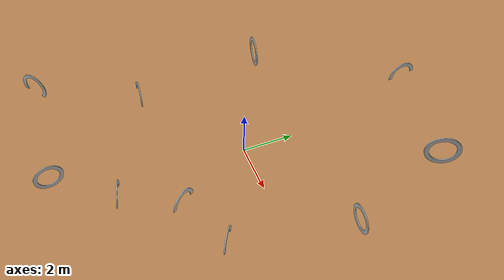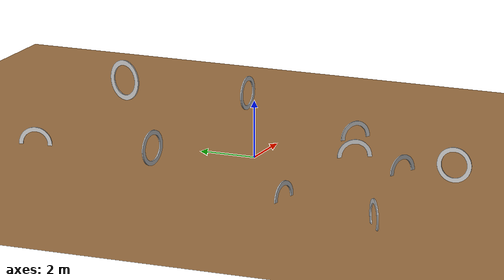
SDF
<sdf version="1.5">
 <world name="default">
  <light type="directional" name="point_light">
   <pose>0.0 0 15 0 0 0</pose>
   <cast_shadows>false</cast_shadows>
  </light>
  <model name="ground_plane">
   <static>1</static>
   <link name="link">
    <collision name="collision">
     <geometry><plane><normal>0 0 1</normal><size>100 100</size></plane></geometry>
     <surface><friction><ode><mu>100</mu><mu2>50</mu2></ode></friction></surface>
    </collision>
    <visual name="visual">
     <cast_shadows>0</cast_shadows>
     <geometry><plane><normal>0 0 1</normal><size>22 22</size></plane></geometry>
     <material><script><uri>model://textures/texture.material</uri><name>Floor_Wood</name></script></material>
    </visual>
   </link>
  </model>
  <physics name="default_physics" default="0" type="ode">
   <gravity>0 0 -9.8066</gravity>
   <ode>
    <solver>
     <type>quick</type>
     <iters>150</iters>
     <sor>1.3</sor>
     <use_dynamic_moi_rescaling>0</use_dynamic_moi_rescaling>
    </solver>
    <constraints>
     <cfm>0.00001</cfm>
     <erp>0.2</erp>
     <contact_max_correcting_vel>1000</contact_max_correcting_vel>
     <contact_surface_layer>0.01</contact_surface_layer>
    </constraints>
   </ode>
   <max_step_size>0.004</max_step_size>
   <real_time_factor>1000.0</real_time_factor>
   <real_time_update_rate>250</real_time_update_rate>
   <magnetic_field>6.0e-6 2.3e-5 -4.2e-5</magnetic_field>
  </physics>
  <gravity>0 0 -9.8066</gravity>
  <magnetic_field>6e-06 2.3e-05 -4.2e-05</magnetic_field>
  <atmosphere type="adiabatic"/>
  <scene><ambient>0.4 0.4 0.4 1</ambient><background>0.7 0.7 0.7 1</background><shadows>1</shadows></scene>
  <spherical_coordinates>
   <surface_model>EARTH_WGS84</surface_model>
   <latitude_deg>0</latitude_deg>
   <longitude_deg>0</longitude_deg>
   <elevation>0</elevation>
   <heading_deg>0</heading_deg>
  </spherical_coordinates>
  <model name="circle_gate_race_3">
   <static>1</static>
   <link name="link">
    <inertial>
     <mass>10</mass>
     <inertia><ixx>10</ixx><ixy>0</ixy><ixz>0</ixz><iyy>10</iyy><iyz>0</iyz><izz>10</izz></inertia>
    </inertial>
    <collision name="collision">
     <geometry>
      <mesh><uri>model://circle_gate_race/meshes/circle_gate_race.stl</uri><scale>1 1 1</scale></mesh>
     </geometry>
    </collision>
    <visual name="visual">
     <geometry>
      <mesh><uri>model://circle_gate_race/meshes/circle_gate_race.stl</uri><scale>1 1 1</scale></mesh>
     </geometry>
     <material><script><uri>model://textures/texture.material</uri><name>gate_texture</name></script></material>
    </visual>
   </link>
   <pose>1.5 -3.1 0 0 -0 0.580225</pose>
  </model>
  <model name="circle_gate_race_4">
   <static>1</static>
   <link name="link">
    <inertial>
     <mass>10</mass>
     <inertia><ixx>10</ixx><ixy>0</ixy><ixz>0</ixz><iyy>10</iyy><iyz>0</iyz><izz>10</izz></inertia>
    </inertial>
    <collision name="collision">
     <geometry>
      <mesh><uri>model://circle_gate_race/meshes/circle_gate_race.stl</uri><scale>1 1 1</scale></mesh>
     </geometry>
    </collision>
    <visual name="visual">
     <geometry>
      <mesh><uri>model://circle_gate_race/meshes/circle_gate_race.stl</uri><scale>1 1 1</scale></mesh>
     </geometry>
     <material><script><uri>model://textures/texture.material</uri><name>gate_texture</name></script></material>
    </visual>
   </link>
   <pose>0.3 -5.3 0 0 -0 1.21727</pose>
  </model>
  <model name="circle_gate_race_2">
   <static>1</static>
   <link name="link">
    <inertial>
     <mass>10</mass>
     <inertia><ixx>10</ixx><ixy>0</ixy><ixz>0</ixz><iyy>10</iyy><iyz>0</iyz><izz>10</izz></inertia>
    </inertial>
    <collision name="collision">
     <geometry>
      <mesh><uri>model://circle_gate_race/meshes/circle_gate_race.stl</uri><scale>1 1 1</scale></mesh>
     </geometry>
    </collision>
    <visual name="visual">
     <geometry>
      <mesh><uri>model://circle_gate_race/meshes/circle_gate_race.stl</uri><scale>1 1 1</scale></mesh>
     </geometry>
     <material><script><uri>model://textures/texture.material</uri><name>gate_texture</name></script></material>
    </visual>
   </link>
   <pose>3.8 -2.2 0 0 -0 0.999678</pose>
  </model>
  <model name="circle_gate_race_1">
   <static>1</static>
   <link name="link">
    <inertial>
     <mass>10</mass>
     <inertia><ixx>10</ixx><ixy>0</ixy><ixz>0</ixz><iyy>10</iyy><iyz>0</iyz><izz>10</izz></inertia>
    </inertial>
    <collision name="collision">
     <geometry>
      <mesh><uri>model://circle_gate_race/meshes/circle_gate_race.stl</uri><scale>1 1 1</scale></mesh>
     </geometry>
    </collision>
    <visual name="visual">
     <geometry>
      <mesh><uri>model://circle_gate_race/meshes/circle_gate_race.stl</uri><scale>1 1 1</scale></mesh>
     </geometry>
     <material><script><uri>model://textures/texture.material</uri><name>gate_texture</name></script></material>
    </visual>
   </link>
   <pose>5.2 2.5 0.8 0 -0 1.56345</pose>
  </model>
  <model name="circle_gate_race_5">
   <static>1</static>
   <link name="link">
    <inertial>
     <mass>10</mass>
     <inertia><ixx>10</ixx><ixy>0</ixy><ixz>0</ixz><iyy>10</iyy><iyz>0</iyz><izz>10</izz></inertia>
    </inertial>
    <collision name="collision">
     <geometry>
      <mesh><uri>model://circle_gate_race/meshes/circle_gate_race.stl</uri><scale>1 1 1</scale></mesh>
     </geometry>
    </collision>
    <visual name="visual">
     <geometry>
      <mesh><uri>model://circle_gate_race/meshes/circle_gate_race.stl</uri><scale>1 1 1</scale></mesh>
     </geometry>
     <material><script><uri>model://textures/texture.material</uri><name>gate_texture</name></script></material>
    </visual>
   </link>
   <pose>-0.9 -7.6 0.8 0 -0 0.056272</pose>
  </model>
  <model name="circle_gate_race_6">
   <static>1</static>
   <link name="link">
    <inertial>
     <mass>10</mass>
     <inertia><ixx>10</ixx><ixy>0</ixy><ixz>0</ixz><iyy>10</iyy><iyz>0</iyz><izz>10</izz></inertia>
    </inertial>
    <collision name="collision">
     <geometry>
      <mesh><uri>model://circle_gate_race/meshes/circle_gate_race.stl</uri><scale>1 1 1</scale></mesh>
     </geometry>
    </collision>
    <visual name="visual">
     <geometry>
      <mesh><uri>model://circle_gate_race/meshes/circle_gate_race.stl</uri><scale>1 1 1</scale></mesh>
     </geometry>
     <material><script><uri>model://textures/texture.material</uri><name>gate_texture</name></script></material>
    </visual>
   </link>
   <pose>-6.1 -6.8 0.3 0 0 -0.971679</pose>
  </model>
  <model name="circle_gate_race_7">
   <static>1</static>
   <link name="link">
    <inertial>
     <mass>10</mass>
     <inertia><ixx>10</ixx><ixy>0</ixy><ixz>0</ixz><iyy>10</iyy><iyz>0</iyz><izz>10</izz></inertia>
    </inertial>
    <collision name="collision">
     <geometry>
      <mesh><uri>model://circle_gate_race/meshes/circle_gate_race.stl</uri><scale>1 1 1</scale></mesh>
     </geometry>
    </collision>
    <visual name="visual">
     <geometry>
      <mesh><uri>model://circle_gate_race/meshes/circle_gate_race.stl</uri><scale>1 1 1</scale></mesh>
     </geometry>
     <material><script><uri>model://textures/texture.material</uri><name>gate_texture</name></script></material>
    </visual>
   </link>
   <pose>-4.3 -2.9 0 0 0 -1.68827</pose>
  </model>
  <model name="circle_gate_race_8">
   <static>1</static>
   <link name="link">
    <inertial>
     <mass>10</mass>
     <inertia><ixx>10</ixx><ixy>0</ixy><ixz>0</ixz><iyy>10</iyy><iyz>0</iyz><izz>10</izz></inertia>
    </inertial>
    <collision name="collision">
     <geometry>
      <mesh><uri>model://circle_gate_race/meshes/circle_gate_race.stl</uri><scale>1 1 1</scale></mesh>
     </geometry>
    </collision>
    <visual name="visual">
     <geometry>
      <mesh><uri>model://circle_gate_race/meshes/circle_gate_race.stl</uri><scale>1 1 1</scale></mesh>
     </geometry>
     <material><script><uri>model://textures/texture.material</uri><name>gate_texture</name></script></material>
    </visual>
   </link>
   <pose>-3.9 2.0 1.1 0 -0 1.42067</pose>
  </model>
  <model name="circle_gate_race_9">
   <static>1</static>
   <link name="link">
    <inertial>
     <mass>10</mass>
     <inertia><ixx>10</ixx><ixy>0</ixy><ixz>0</ixz><iyy>10</iyy><iyz>0</iyz><izz>10</izz></inertia>
    </inertial>
    <collision name="collision">
     <geometry>
      <mesh><uri>model://circle_gate_race/meshes/circle_gate_race.stl</uri><scale>1 1 1</scale></mesh>
     </geometry>
    </collision>
    <visual name="visual">
     <geometry>
      <mesh><uri>model://circle_gate_race/meshes/circle_gate_race.stl</uri><scale>1 1 1</scale></mesh>
     </geometry>
     <material><script><uri>model://textures/texture.material</uri><name>gate_texture</name></script></material>
    </visual>
   </link>
   <pose>-1.4 7.6 0 0 -0 0.136466</pose>
  </model>
  <model name="circle_gate_race_0">
   <static>1</static>
   <link name="link">
    <inertial>
     <mass>10</mass>
     <inertia><ixx>10</ixx><ixy>0</ixy><ixz>0</ixz><iyy>10</iyy><iyz>0</iyz><izz>10</izz></inertia>
    </inertial>
    <collision name="collision">
     <geometry>
      <mesh><uri>model://circle_gate_race/meshes/circle_gate_race.stl</uri><scale>1.2 1.2 1.2</scale></mesh>
     </geometry>
    </collision>
    <visual name="visual">
     <geometry>
      <mesh><uri>model://circle_gate_race/meshes/circle_gate_race.stl</uri><scale>1.2 1.2 1.2</scale></mesh>
     </geometry>
     <material><script><uri>model://textures/texture.material</uri><name>gate_texture</name></script></material>
    </visual>
   </link>
   <pose>3.7 6.6 1.2 0 0 -0.393424</pose>
  </model>
 </world>
</sdf>
